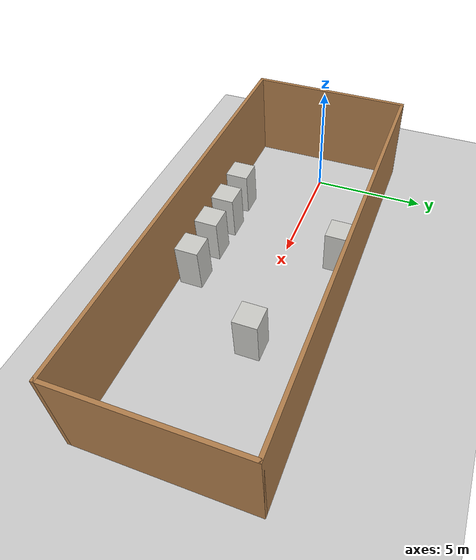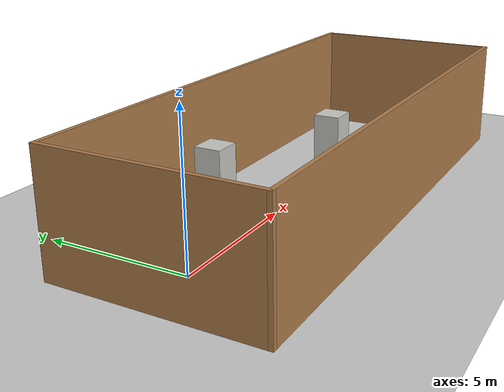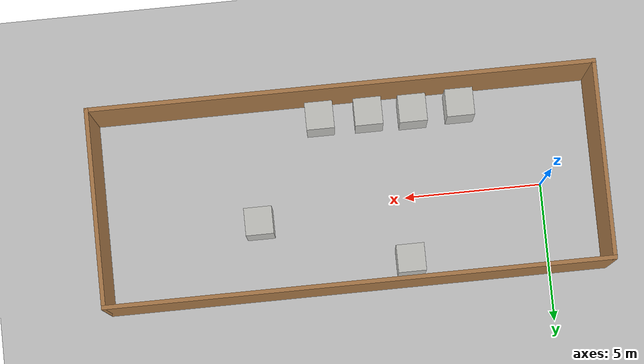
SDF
<sdf version="1.7">
 <world name="default">
  <light name="sun" type="directional">
   <pose>0 0 10 0 -0 0</pose>
   <diffuse>0.8 0.8 0.8 1</diffuse>
   <specular>0.2 0.2 0.2 1</specular>
   <attenuation>
    <range>1000</range>
    <constant>0.9</constant>
    <linear>0.01</linear>
    <quadratic>0.001</quadratic>
   </attenuation>
   <direction>-0.5 0.1 -0.9</direction>
   <spot><inner_angle>0</inner_angle><outer_angle>0</outer_angle><falloff>0</falloff></spot>
  </light>
  <model name="ground_plane">
   <static>1</static>
   <link name="link">
    <collision name="collision">
     <geometry><plane><normal>0 0 1</normal><size>100 100</size></plane></geometry>
     <surface>
      <contact><collide_bitmask>65535</collide_bitmask></contact>
      <friction><ode><mu>100</mu><mu2>50</mu2></ode></friction>
     </surface>
    </collision>
    <visual name="visual">
     <cast_shadows>0</cast_shadows>
     <geometry><plane><normal>0 0 1</normal><size>100 100</size></plane></geometry>
     <material>
      <script><uri>file://media/materials/scripts/gazebo.material</uri><name>Gazebo/Grey</name></script>
     </material>
    </visual>
   </link>
  </model>
  <gravity>0 0 -9.8</gravity>
  <magnetic_field>6e-06 2.3e-05 -4.2e-05</magnetic_field>
  <atmosphere type="adiabatic"/>
  <physics type="ode">
   <max_step_size>0.001</max_step_size>
   <real_time_factor>1</real_time_factor>
   <real_time_update_rate>1000</real_time_update_rate>
  </physics>
  <scene><ambient>0.4 0.4 0.4 1</ambient><background>0.7 0.7 0.7 1</background><shadows>1</shadows></scene>
  <spherical_coordinates>
   <surface_model>EARTH_WGS84</surface_model>
   <latitude_deg>0</latitude_deg>
   <longitude_deg>0</longitude_deg>
   <elevation>0</elevation>
   <heading_deg>0</heading_deg>
  </spherical_coordinates>
  <model name="mill19_floor2_0">
   <pose>7 -0.3 0 0 -0 0</pose>
   <link name="Wall_10">
    <collision name="Wall_10_Collision">
     <geometry><box><size>7.15 0.15 4</size></box></geometry>
     <pose>0 0 2 0 -0 0</pose>
    </collision>
    <visual name="Wall_10_Visual">
     <pose>0 0 2 0 -0 0</pose>
     <geometry><box><size>7.15 0.15 4</size></box></geometry>
     <material>
      <script><uri>file://media/materials/scripts/gazebo.material</uri><name>Gazebo/Wood</name></script>
      <ambient>1 1 1 1</ambient>
     </material>
     <meta><layer>0</layer></meta>
    </visual>
    <pose>-9 -0 0 0 -0 1.5708</pose>
   </link>
   <link name="Wall_11">
    <collision name="Wall_11_Collision">
     <geometry><box><size>18.15 0.15 4</size></box></geometry>
     <pose>0 0 2 0 -0 0</pose>
    </collision>
    <visual name="Wall_11_Visual">
     <pose>0 0 2 0 -0 0</pose>
     <geometry><box><size>18.15 0.15 4</size></box></geometry>
     <material>
      <script><uri>file://media/materials/scripts/gazebo.material</uri><name>Gazebo/Wood</name></script>
      <ambient>1 1 1 1</ambient>
     </material>
     <meta><layer>0</layer></meta>
    </visual>
    <pose>-0 3.5 0 0 -0 0</pose>
   </link>
   <link name="Wall_12">
    <collision name="Wall_12_Collision">
     <geometry><box><size>7.15 0.15 4</size></box></geometry>
     <pose>0 0 2 0 -0 0</pose>
    </collision>
    <visual name="Wall_12_Visual">
     <pose>0 0 2 0 -0 0</pose>
     <geometry><box><size>7.15 0.15 4</size></box></geometry>
     <material>
      <script><uri>file://media/materials/scripts/gazebo.material</uri><name>Gazebo/Wood</name></script>
      <ambient>1 1 1 1</ambient>
     </material>
     <meta><layer>0</layer></meta>
    </visual>
    <pose>9 -0 0 0 -0 -1.5708</pose>
   </link>
   <link name="Wall_13">
    <collision name="Wall_13_Collision">
     <geometry><box><size>18.15 0.15 4</size></box></geometry>
     <pose>0 0 2 0 -0 0</pose>
    </collision>
    <visual name="Wall_13_Visual">
     <pose>0 0 2 0 -0 0</pose>
     <geometry><box><size>18.15 0.15 4</size></box></geometry>
     <material>
      <script><uri>file://media/materials/scripts/gazebo.material</uri><name>Gazebo/Wood</name></script>
      <ambient>1 1 1 1</ambient>
     </material>
     <meta><layer>0</layer></meta>
    </visual>
    <pose>-0 -3.5 0 0 -0 3.14159</pose>
   </link>
   <static>1</static>
  </model>
  <model name="box_1_1_2">
   <pose>3.59345 -1.64316 0 0 -0 0</pose>
   <link name="Wall_0">
    <collision name="Wall_0_Collision">
     <geometry><box><size>1.01 1 2</size></box></geometry>
     <pose>0 0 1 0 -0 0</pose>
    </collision>
    <visual name="Wall_0_Visual">
     <pose>0 0 1 0 -0 0</pose>
     <geometry><box><size>1.01 1 2</size></box></geometry>
     <material>
      <script><uri>file://media/materials/scripts/gazebo.material</uri><name>Gazebo/CeilingTiled</name></script>
      <ambient>0.921569 0.807843 0.615686 1</ambient>
     </material>
     <meta><layer>0</layer></meta>
    </visual>
    <pose>-0.85 -1.44 0 0 -0 0</pose>
   </link>
   <static>1</static>
  </model>
  <model name="box_1_1_2_0">
   <pose>5.31396 -1.59813 0 0 -0 0</pose>
   <link name="Wall_0">
    <collision name="Wall_0_Collision">
     <geometry><box><size>1.01 1 2</size></box></geometry>
     <pose>0 0 1 0 -0 0</pose>
    </collision>
    <visual name="Wall_0_Visual">
     <pose>0 0 1 0 -0 0</pose>
     <geometry><box><size>1.01 1 2</size></box></geometry>
     <material>
      <script><uri>file://media/materials/scripts/gazebo.material</uri><name>Gazebo/CeilingTiled</name></script>
      <ambient>0.921569 0.807843 0.615686 1</ambient>
     </material>
     <meta><layer>0</layer></meta>
    </visual>
    <pose>-0.85 -1.44 0 0 -0 0</pose>
   </link>
   <static>1</static>
  </model>
  <model name="box_1_1_2_1">
   <pose>6.92016 -1.63553 0 0 -0 0</pose>
   <link name="Wall_0">
    <collision name="Wall_0_Collision">
     <geometry><box><size>1.01 1 2</size></box></geometry>
     <pose>0 0 1 0 -0 0</pose>
    </collision>
    <visual name="Wall_0_Visual">
     <pose>0 0 1 0 -0 0</pose>
     <geometry><box><size>1.01 1 2</size></box></geometry>
     <material>
      <script><uri>file://media/materials/scripts/gazebo.material</uri><name>Gazebo/CeilingTiled</name></script>
      <ambient>0.921569 0.807843 0.615686 1</ambient>
     </material>
     <meta><layer>0</layer></meta>
    </visual>
    <pose>-0.85 -1.44 0 0 -0 0</pose>
   </link>
   <static>1</static>
  </model>
  <model name="box_1_1_2_2">
   <pose>8.68123 -1.65869 0 0 -0 0</pose>
   <link name="Wall_0">
    <collision name="Wall_0_Collision">
     <geometry><box><size>1.01 1 2</size></box></geometry>
     <pose>0 0 1 0 -0 0</pose>
    </collision>
    <visual name="Wall_0_Visual">
     <pose>0 0 1 0 -0 0</pose>
     <geometry><box><size>1.01 1 2</size></box></geometry>
     <material>
      <script><uri>file://media/materials/scripts/gazebo.material</uri><name>Gazebo/CeilingTiled</name></script>
      <ambient>0.921569 0.807843 0.615686 1</ambient>
     </material>
     <meta><layer>0</layer></meta>
    </visual>
    <pose>-0.85 -1.44 0 0 -0 0</pose>
   </link>
   <static>1</static>
  </model>
  <model name="box_1_1_2_3">
   <pose>5.89621 3.79219 0 0 -0 0</pose>
   <link name="Wall_0">
    <collision name="Wall_0_Collision">
     <geometry><box><size>1.01 1 2</size></box></geometry>
     <pose>0 0 1 0 -0 0</pose>
    </collision>
    <visual name="Wall_0_Visual">
     <pose>0 0 1 0 -0 0</pose>
     <geometry><box><size>1.01 1 2</size></box></geometry>
     <material>
      <script><uri>file://media/materials/scripts/gazebo.material</uri><name>Gazebo/CeilingTiled</name></script>
      <ambient>0.921569 0.807843 0.615686 1</ambient>
     </material>
     <meta><layer>0</layer></meta>
    </visual>
    <pose>-0.85 -1.44 0 0 -0 0</pose>
   </link>
   <static>1</static>
  </model>
  <model name="box_1_1_2_4">
   <pose>11.2212 1.93582 0 0 -0 0</pose>
   <link name="Wall_0">
    <collision name="Wall_0_Collision">
     <geometry><box><size>1.01 1 2</size></box></geometry>
     <pose>0 0 1 0 -0 0</pose>
    </collision>
    <visual name="Wall_0_Visual">
     <pose>0 0 1 0 -0 0</pose>
     <geometry><box><size>1.01 1 2</size></box></geometry>
     <material>
      <script><uri>file://media/materials/scripts/gazebo.material</uri><name>Gazebo/CeilingTiled</name></script>
      <ambient>0.921569 0.807843 0.615686 1</ambient>
     </material>
     <meta><layer>0</layer></meta>
    </visual>
    <pose>-0.85 -1.44 0 0 -0 0</pose>
   </link>
   <static>1</static>
  </model>
 </world>
</sdf>
